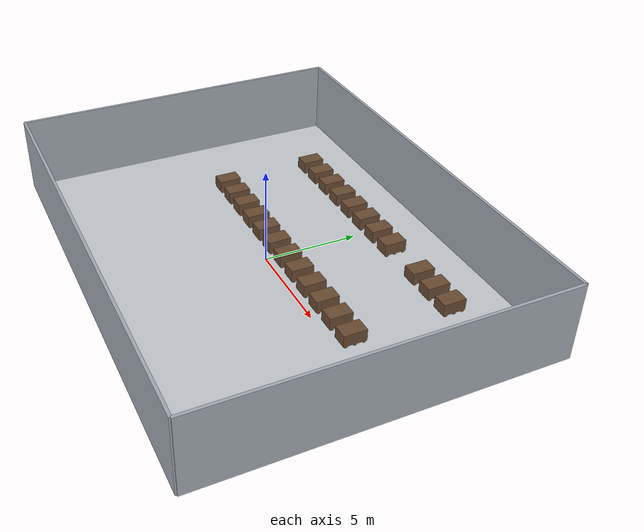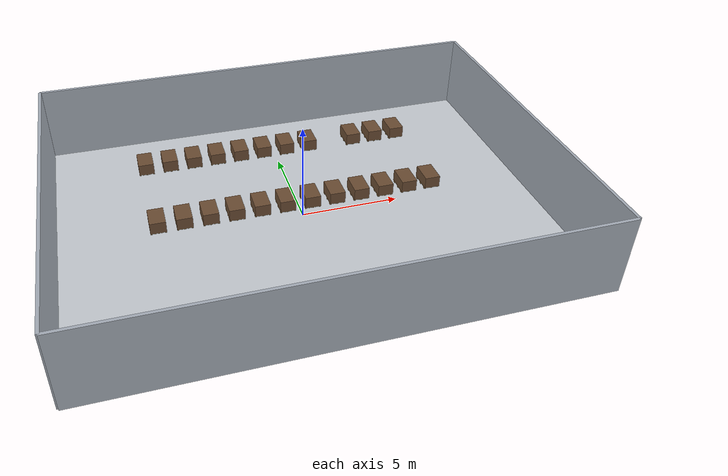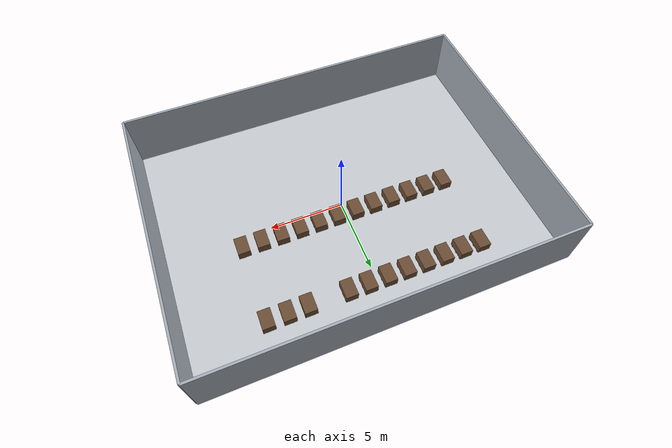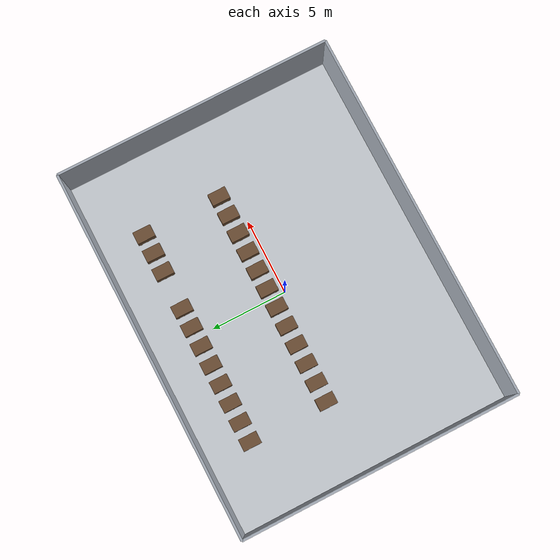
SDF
<?xml version="1.0"?>
<sdf version="1.9">
  <world name="demo_room">
    <gravity>0 0 -9.81</gravity>
    <magnetic_field>6e-06 2.3e-05 -4.2e-05</magnetic_field>
    <physics name="dart_physics" type="dart">
      <max_step_size>0.001</max_step_size>
      <real_time_factor>1.0</real_time_factor>
      <real_time_update_rate>1000</real_time_update_rate>
    </physics>

    <plugin filename="gz-sim-physics-system" name="gz::sim::systems::Physics"/>
    <plugin filename="gz-sim-user-commands-system" name="gz::sim::systems::UserCommands"/>
    <plugin filename="gz-sim-scene-broadcaster-system" name="gz::sim::systems::SceneBroadcaster"/>
    <plugin filename="gz-sim-sensors-system" name="gz::sim::systems::Sensors">
      <render_engine>ogre2</render_engine>
    </plugin>

    <light type="directional" name="sun">
      <cast_shadows>true</cast_shadows>
      <pose>0 0 10 0 0 0</pose>
      <diffuse>0.9 0.9 0.9 1.0</diffuse>
      <specular>0.2 0.2 0.2 1.0</specular>
      <attenuation>
        <range>1000</range>
        <constant>0.9</constant>
        <linear>0.01</linear>
        <quadratic>0.001</quadratic>
      </attenuation>
      <direction>-0.4 0.1 -0.9</direction>
    </light>

    <model name="floor">
      <static>true</static>
      <link name="floor_link">
        <collision name="floor_collision">
          <geometry>
            <box>
              <size>24 18 0.1</size>
            </box>
          </geometry>
          <surface>
            <friction>
              <ode>
                <mu>200.0</mu>
                <mu2>200.0</mu2>
                <slip1>0.0</slip1>
                <slip2>0.0</slip2>
              </ode>
              <bullet>
                <friction>200.0</friction>
                <friction2>200.0</friction2>
              </bullet>
            </friction>
          </surface>
        </collision>
        <visual name="floor_visual">
          <geometry>
            <box>
              <size>24 18 0.1</size>
            </box>
          </geometry>
          <material>
            <ambient>0.78 0.80 0.82 1.0</ambient>
            <diffuse>0.78 0.80 0.82 1.0</diffuse>
          </material>
        </visual>
      </link>
    </model>

    <model name="north_wall">
      <static>true</static>
      <pose>0 9 2 0 0 0</pose>
      <link name="link">
        <collision name="collision">
          <geometry>
            <box>
              <size>24 0.15 4.0</size>
            </box>
          </geometry>
        </collision>
        <visual name="visual">
          <geometry>
            <box>
              <size>24 0.15 4.0</size>
            </box>
          </geometry>
          <material>
            <ambient>0.65 0.68 0.72 1.0</ambient>
            <diffuse>0.65 0.68 0.72 1.0</diffuse>
          </material>
        </visual>
      </link>
    </model>

    <model name="south_wall">
      <static>true</static>
      <pose>0 -9 2 0 0 0</pose>
      <link name="link">
        <collision name="collision">
          <geometry>
            <box>
              <size>24 0.15 4.0</size>
            </box>
          </geometry>
        </collision>
        <visual name="visual">
          <geometry>
            <box>
              <size>24 0.15 4.0</size>
            </box>
          </geometry>
          <material>
            <ambient>0.65 0.68 0.72 1.0</ambient>
            <diffuse>0.65 0.68 0.72 1.0</diffuse>
          </material>
        </visual>
      </link>
    </model>

    <model name="east_wall">
      <static>true</static>
      <pose>12 0 2 0 0 0</pose>
      <link name="link">
        <collision name="collision">
          <geometry>
            <box>
              <size>0.15 18 4.0</size>
            </box>
          </geometry>
        </collision>
        <visual name="visual">
          <geometry>
            <box>
              <size>0.15 18 4.0</size>
            </box>
          </geometry>
          <material>
            <ambient>0.65 0.68 0.72 1.0</ambient>
            <diffuse>0.65 0.68 0.72 1.0</diffuse>
          </material>
        </visual>
      </link>
    </model>

    <model name="west_wall">
      <static>true</static>
      <pose>-12 0 2 0 0 0</pose>
      <link name="link">
        <collision name="collision">
          <geometry>
            <box>
              <size>0.15 18 4.0</size>
            </box>
          </geometry>
        </collision>
        <visual name="visual">
          <geometry>
            <box>
              <size>0.15 18 4.0</size>
            </box>
          </geometry>
          <material>
            <ambient>0.65 0.68 0.72 1.0</ambient>
            <diffuse>0.65 0.68 0.72 1.0</diffuse>
          </material>
        </visual>
      </link>
    </model>

    <include><name>pallet_b_south_00</name><uri>model://euro_pallet</uri><pose>-7.15 0.90 0 0 0 1.57079632679</pose><static>false</static></include>
    <include><name>pallet_b_south_01</name><uri>model://euro_pallet</uri><pose>-5.85 0.90 0 0 0 1.57079632679</pose><static>false</static></include>
    <include><name>pallet_b_south_02</name><uri>model://euro_pallet</uri><pose>-4.55 0.90 0 0 0 1.57079632679</pose><static>false</static></include>
    <include><name>pallet_b_south_03</name><uri>model://euro_pallet</uri><pose>-3.25 0.90 0 0 0 1.57079632679</pose><static>false</static></include>
    <include><name>pallet_b_south_04</name><uri>model://euro_pallet</uri><pose>-1.95 0.90 0 0 0 1.57079632679</pose><static>false</static></include>
    <include><name>pallet_b_south_05</name><uri>model://euro_pallet</uri><pose>-0.65 0.90 0 0 0 1.57079632679</pose><static>false</static></include>
    <include><name>pallet_b_south_06</name><uri>model://euro_pallet</uri><pose>0.65 0.90 0 0 0 1.57079632679</pose><static>false</static></include>
    <include><name>pallet_b_south_07</name><uri>model://euro_pallet</uri><pose>1.95 0.90 0 0 0 1.57079632679</pose><static>false</static></include>
    <include><name>pallet_b_south_08</name><uri>model://euro_pallet</uri><pose>3.25 0.90 0 0 0 1.57079632679</pose><static>false</static></include>
    <include><name>pallet_b_south_09</name><uri>model://euro_pallet</uri><pose>4.55 0.90 0 0 0 1.57079632679</pose><static>false</static></include>
    <include><name>pallet_b_south_10</name><uri>model://euro_pallet</uri><pose>5.85 0.90 0 0 0 1.57079632679</pose><static>false</static></include>
    <include><name>pallet_b_south_11</name><uri>model://euro_pallet</uri><pose>7.15 0.90 0 0 0 1.57079632679</pose><static>false</static></include>

    <include><name>pallet_b_north_00</name><uri>model://euro_pallet</uri><pose>-7.15 6.10 0 0 0 1.57079632679</pose><static>false</static></include>
    <include><name>pallet_b_north_01</name><uri>model://euro_pallet</uri><pose>-5.85 6.10 0 0 0 1.57079632679</pose><static>false</static></include>
    <include><name>pallet_b_north_02</name><uri>model://euro_pallet</uri><pose>-4.55 6.10 0 0 0 1.57079632679</pose><static>false</static></include>
    <include><name>pallet_b_north_03</name><uri>model://euro_pallet</uri><pose>-3.25 6.10 0 0 0 1.57079632679</pose><static>false</static></include>
    <include><name>pallet_b_north_04</name><uri>model://euro_pallet</uri><pose>-1.95 6.10 0 0 0 1.57079632679</pose><static>false</static></include>
    <include><name>pallet_b_north_05</name><uri>model://euro_pallet</uri><pose>-0.65 6.10 0 0 0 1.57079632679</pose><static>false</static></include>
    <include><name>pallet_b_north_06</name><uri>model://euro_pallet</uri><pose>0.65 6.10 0 0 0 1.57079632679</pose><static>false</static></include>
    <include><name>pallet_b_north_07</name><uri>model://euro_pallet</uri><pose>1.95 6.10 0 0 0 1.57079632679</pose><static>false</static></include>
    <include><name>pallet_b_north_09</name><uri>model://euro_pallet</uri><pose>4.55 6.10 0 0 0 1.57079632679</pose><static>false</static></include>
    <include><name>pallet_b_north_10</name><uri>model://euro_pallet</uri><pose>5.85 6.10 0 0 0 1.57079632679</pose><static>false</static></include>
    <include><name>pallet_b_north_11</name><uri>model://euro_pallet</uri><pose>7.15 6.10 0 0 0 1.57079632679</pose><static>false</static></include>

  </world>
</sdf>

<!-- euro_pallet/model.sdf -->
<sdf version="1.9">
  <model name="euro_pallet">
    <pose>0 0 0 0 0 0</pose>
    <static>false</static>
    <self_collide>false</self_collide>
    <allow_auto_disable>false</allow_auto_disable>

    <link name="pallet_link">
      <inertial>
        <pose>0 0 0.072 0 0 0</pose>
        <mass>25.0</mass>
        <inertia>
          <ixx>1.38</ixx>
          <iyy>3.04</iyy>
          <izz>4.33</izz>
          <ixy>0.0</ixy>
          <ixz>0.0</ixz>
          <iyz>0.0</iyz>
        </inertia>
      </inertial>

      <collision name="top_board_outer_left_collision">
        <pose>0 -0.35 0.133 0 0 0</pose>
        <geometry>
          <box>
            <size>1.2 0.10 0.022</size>
          </box>
        </geometry>
      </collision>
      <collision name="top_board_inner_left_collision">
        <pose>0 -0.17 0.133 0 0 0</pose>
        <geometry>
          <box>
            <size>1.2 0.145 0.022</size>
          </box>
        </geometry>
      </collision>
      <collision name="top_board_center_collision">
        <pose>0 0 0.133 0 0 0</pose>
        <geometry>
          <box>
            <size>1.2 0.145 0.022</size>
          </box>
        </geometry>
      </collision>
      <collision name="top_board_inner_right_collision">
        <pose>0 0.17 0.133 0 0 0</pose>
        <geometry>
          <box>
            <size>1.2 0.145 0.022</size>
          </box>
        </geometry>
      </collision>
      <collision name="top_board_outer_right_collision">
        <pose>0 0.35 0.133 0 0 0</pose>
        <geometry>
          <box>
            <size>1.2 0.10 0.022</size>
          </box>
        </geometry>
      </collision>

      <collision name="bottom_board_left_collision">
        <pose>0 -0.34 0.011 0 0 0</pose>
        <geometry>
          <box>
            <size>1.2 0.10 0.022</size>
          </box>
        </geometry>
        <surface>
          <friction>
            <ode>
              <mu>1.2</mu>
              <mu2>1.2</mu2>
              <slip1>0.0</slip1>
              <slip2>0.0</slip2>
            </ode>
            <bullet>
              <friction>1.2</friction>
              <friction2>1.2</friction2>
            </bullet>
          </friction>
        </surface>
      </collision>
      <collision name="bottom_board_center_collision">
        <pose>0 0 0.011 0 0 0</pose>
        <geometry>
          <box>
            <size>1.2 0.10 0.022</size>
          </box>
        </geometry>
        <surface>
          <friction>
            <ode>
              <mu>1.2</mu>
              <mu2>1.2</mu2>
              <slip1>0.0</slip1>
              <slip2>0.0</slip2>
            </ode>
            <bullet>
              <friction>1.2</friction>
              <friction2>1.2</friction2>
            </bullet>
          </friction>
        </surface>
      </collision>
      <collision name="bottom_board_right_collision">
        <pose>0 0.34 0.011 0 0 0</pose>
        <geometry>
          <box>
            <size>1.2 0.10 0.022</size>
          </box>
        </geometry>
        <surface>
          <friction>
            <ode>
              <mu>1.2</mu>
              <mu2>1.2</mu2>
              <slip1>0.0</slip1>
              <slip2>0.0</slip2>
            </ode>
            <bullet>
              <friction>1.2</friction>
              <friction2>1.2</friction2>
            </bullet>
          </friction>
        </surface>
      </collision>

      <collision name="block_1_collision">
        <pose>-0.46 -0.35 0.061 0 0 0</pose>
        <geometry>
          <box>
            <size>0.145 0.10 0.078</size>
          </box>
        </geometry>
      </collision>
      <collision name="block_2_collision">
        <pose>0 -0.35 0.061 0 0 0</pose>
        <geometry>
          <box>
            <size>0.145 0.10 0.078</size>
          </box>
        </geometry>
      </collision>
      <collision name="block_3_collision">
        <pose>0.46 -0.35 0.061 0 0 0</pose>
        <geometry>
          <box>
            <size>0.145 0.10 0.078</size>
          </box>
        </geometry>
      </collision>
      <collision name="block_4_collision">
        <pose>-0.46 0 0.061 0 0 0</pose>
        <geometry>
          <box>
            <size>0.145 0.10 0.078</size>
          </box>
        </geometry>
      </collision>
      <collision name="block_5_collision">
        <pose>0 0 0.061 0 0 0</pose>
        <geometry>
          <box>
            <size>0.145 0.10 0.078</size>
          </box>
        </geometry>
      </collision>
      <collision name="block_6_collision">
        <pose>0.46 0 0.061 0 0 0</pose>
        <geometry>
          <box>
            <size>0.145 0.10 0.078</size>
          </box>
        </geometry>
      </collision>
      <collision name="block_7_collision">
        <pose>-0.46 0.35 0.061 0 0 0</pose>
        <geometry>
          <box>
            <size>0.145 0.10 0.078</size>
          </box>
        </geometry>
      </collision>
      <collision name="block_8_collision">
        <pose>0 0.35 0.061 0 0 0</pose>
        <geometry>
          <box>
            <size>0.145 0.10 0.078</size>
          </box>
        </geometry>
      </collision>
      <collision name="block_9_collision">
        <pose>0.46 0.35 0.061 0 0 0</pose>
        <geometry>
          <box>
            <size>0.145 0.10 0.078</size>
          </box>
        </geometry>
      </collision>
      <collision name="marker_box_collision">
        <pose>0 0 0.444 0 0 0</pose>
        <geometry>
          <box>
            <size>1.2 0.8 0.60</size>
          </box>
        </geometry>
      </collision>

      <visual name="top_board_outer_left">
        <pose>0 -0.35 0.133 0 0 0</pose>
        <geometry>
          <box>
            <size>1.2 0.10 0.022</size>
          </box>
        </geometry>
        <material>
          <ambient>0.67 0.54 0.34 1.0</ambient>
          <diffuse>0.67 0.54 0.34 1.0</diffuse>
        </material>
      </visual>
      <visual name="top_board_inner_left">
        <pose>0 -0.17 0.133 0 0 0</pose>
        <geometry>
          <box>
            <size>1.2 0.145 0.022</size>
          </box>
        </geometry>
        <material>
          <ambient>0.69 0.56 0.36 1.0</ambient>
          <diffuse>0.69 0.56 0.36 1.0</diffuse>
        </material>
      </visual>
      <visual name="top_board_center">
        <pose>0 0 0.133 0 0 0</pose>
        <geometry>
          <box>
            <size>1.2 0.145 0.022</size>
          </box>
        </geometry>
        <material>
          <ambient>0.66 0.53 0.33 1.0</ambient>
          <diffuse>0.66 0.53 0.33 1.0</diffuse>
        </material>
      </visual>
      <visual name="top_board_inner_right">
        <pose>0 0.17 0.133 0 0 0</pose>
        <geometry>
          <box>
            <size>1.2 0.145 0.022</size>
          </box>
        </geometry>
        <material>
          <ambient>0.69 0.56 0.36 1.0</ambient>
          <diffuse>0.69 0.56 0.36 1.0</diffuse>
        </material>
      </visual>
      <visual name="top_board_outer_right">
        <pose>0 0.35 0.133 0 0 0</pose>
        <geometry>
          <box>
            <size>1.2 0.10 0.022</size>
          </box>
        </geometry>
        <material>
          <ambient>0.67 0.54 0.34 1.0</ambient>
          <diffuse>0.67 0.54 0.34 1.0</diffuse>
        </material>
      </visual>

      <visual name="bottom_board_left">
        <pose>0 -0.27 0.011 0 0 0</pose>
        <geometry>
          <box>
            <size>1.2 0.145 0.022</size>
          </box>
        </geometry>
        <material>
          <ambient>0.60 0.48 0.30 1.0</ambient>
          <diffuse>0.60 0.48 0.30 1.0</diffuse>
        </material>
      </visual>
      <visual name="bottom_board_center">
        <pose>0 0 0.011 0 0 0</pose>
        <geometry>
          <box>
            <size>1.2 0.145 0.022</size>
          </box>
        </geometry>
        <material>
          <ambient>0.60 0.48 0.30 1.0</ambient>
          <diffuse>0.60 0.48 0.30 1.0</diffuse>
        </material>
      </visual>
      <visual name="bottom_board_right">
        <pose>0 0.27 0.011 0 0 0</pose>
        <geometry>
          <box>
            <size>1.2 0.145 0.022</size>
          </box>
        </geometry>
        <material>
          <ambient>0.60 0.48 0.30 1.0</ambient>
          <diffuse>0.60 0.48 0.30 1.0</diffuse>
        </material>
      </visual>

      <visual name="block_1">
        <pose>-0.46 -0.35 0.061 0 0 0</pose>
        <geometry>
          <box>
            <size>0.145 0.10 0.078</size>
          </box>
        </geometry>
        <material>
          <ambient>0.55 0.43 0.26 1.0</ambient>
          <diffuse>0.55 0.43 0.26 1.0</diffuse>
        </material>
      </visual>
      <visual name="block_2">
        <pose>0 -0.35 0.061 0 0 0</pose>
        <geometry>
          <box>
            <size>0.145 0.10 0.078</size>
          </box>
        </geometry>
        <material>
          <ambient>0.55 0.43 0.26 1.0</ambient>
          <diffuse>0.55 0.43 0.26 1.0</diffuse>
        </material>
      </visual>
      <visual name="block_3">
        <pose>0.46 -0.35 0.061 0 0 0</pose>
        <geometry>
          <box>
            <size>0.145 0.10 0.078</size>
          </box>
        </geometry>
        <material>
          <ambient>0.55 0.43 0.26 1.0</ambient>
          <diffuse>0.55 0.43 0.26 1.0</diffuse>
        </material>
      </visual>
      <visual name="block_4">
        <pose>-0.46 0 0.061 0 0 0</pose>
        <geometry>
          <box>
            <size>0.145 0.10 0.078</size>
          </box>
        </geometry>
        <material>
          <ambient>0.55 0.43 0.26 1.0</ambient>
          <diffuse>0.55 0.43 0.26 1.0</diffuse>
        </material>
      </visual>
      <visual name="block_5">
        <pose>0 0 0.061 0 0 0</pose>
        <geometry>
          <box>
            <size>0.145 0.10 0.078</size>
          </box>
        </geometry>
        <material>
          <ambient>0.55 0.43 0.26 1.0</ambient>
          <diffuse>0.55 0.43 0.26 1.0</diffuse>
        </material>
      </visual>
      <visual name="block_6">
        <pose>0.46 0 0.061 0 0 0</pose>
        <geometry>
          <box>
            <size>0.145 0.10 0.078</size>
          </box>
        </geometry>
        <material>
          <ambient>0.55 0.43 0.26 1.0</ambient>
          <diffuse>0.55 0.43 0.26 1.0</diffuse>
        </material>
      </visual>
      <visual name="block_7">
        <pose>-0.46 0.35 0.061 0 0 0</pose>
        <geometry>
          <box>
            <size>0.145 0.10 0.078</size>
          </box>
        </geometry>
        <material>
          <ambient>0.55 0.43 0.26 1.0</ambient>
          <diffuse>0.55 0.43 0.26 1.0</diffuse>
        </material>
      </visual>
      <visual name="block_8">
        <pose>0 0.35 0.061 0 0 0</pose>
        <geometry>
          <box>
            <size>0.145 0.10 0.078</size>
          </box>
        </geometry>
        <material>
          <ambient>0.55 0.43 0.26 1.0</ambient>
          <diffuse>0.55 0.43 0.26 1.0</diffuse>
        </material>
      </visual>
      <visual name="block_9">
        <pose>0.46 0.35 0.061 0 0 0</pose>
        <geometry>
          <box>
            <size>0.145 0.10 0.078</size>
          </box>
        </geometry>
        <material>
          <ambient>0.55 0.43 0.26 1.0</ambient>
          <diffuse>0.55 0.43 0.26 1.0</diffuse>
        </material>
      </visual>
      <visual name="marker_box">
        <pose>0 0 0.444 0 0 0</pose>
        <geometry>
          <box>
            <size>1.2 0.8 0.60</size>
          </box>
        </geometry>
        <material>
          <ambient>0.35 0.24 0.16 1.0</ambient>
          <diffuse>0.42 0.30 0.20 1.0</diffuse>
          <specular>0.04 0.035 0.03 1.0</specular>
        </material>
      </visual>
    </link>
  </model>
</sdf>
